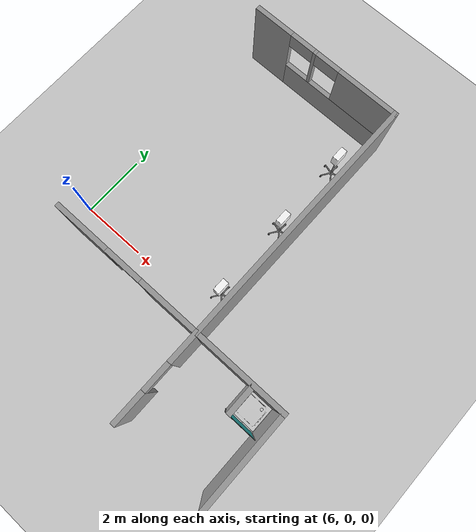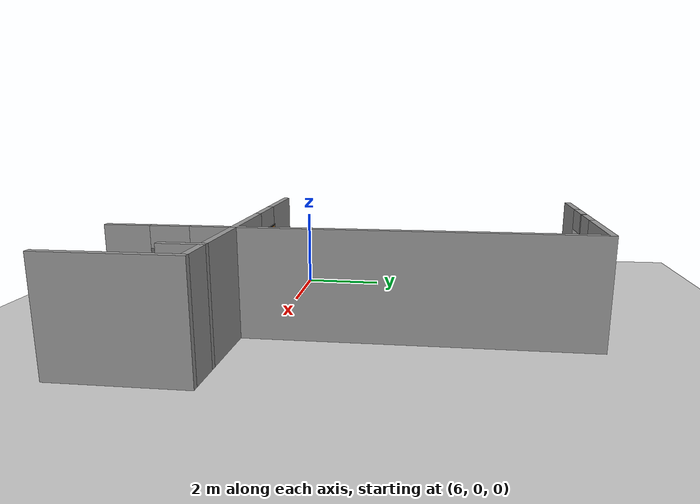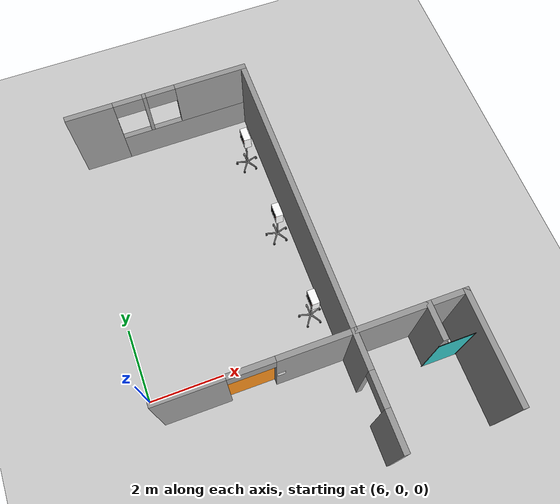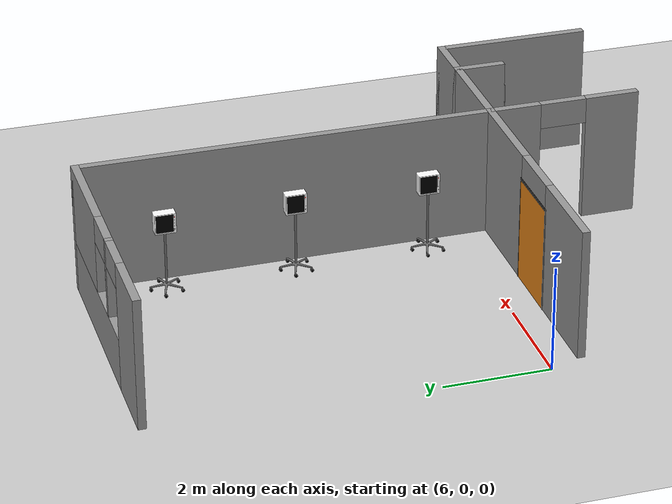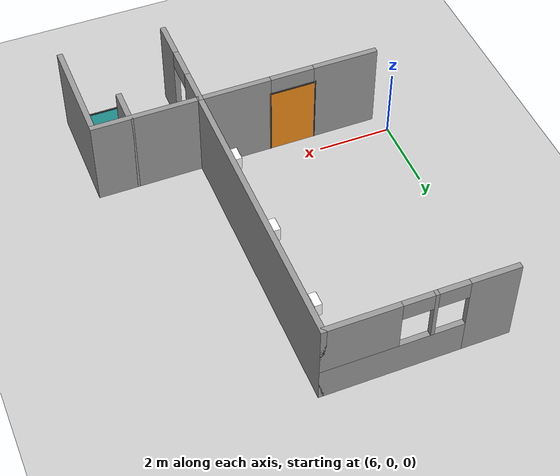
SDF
<sdf version="1.6">
 <world name="default">
  <model name="ground_plane">
   <static>1</static>
   <link name="link">
    <collision name="collision">
     <geometry><plane><normal>0 0 1</normal><size>100 100</size></plane></geometry>
     <surface><friction><ode><mu>100</mu><mu2>50</mu2></ode></friction></surface>
    </collision>
    <visual name="visual">
     <cast_shadows>0</cast_shadows>
     <geometry><plane><normal>0 0 1</normal><size>100 100</size></plane></geometry>
     <material>
      <script><uri>file://media/materials/scripts/gazebo.material</uri><name>Gazebo/Grey</name></script>
     </material>
    </visual>
   </link>
  </model>
  <model name="vitals_monitor_clone_2">
   <static>1</static>
   <link name="vitals_monitor">
    <collision name="vitals_monitor">
     <geometry><mesh><uri>model://vitals_monitor/meshes/model.dae</uri></mesh></geometry>
    </collision>
    <visual name="vitals_monitor_mesh">
     <geometry><mesh><uri>model://vitals_monitor/meshes/model.dae</uri></mesh></geometry>
    </visual>
   </link>
   <pose>10.6596 5.74993 0 0 0 -1.5708</pose>
  </model>
  <model name="vitals_monitor_clone_2_clone">
   <static>1</static>
   <link name="vitals_monitor">
    <collision name="vitals_monitor">
     <geometry><mesh><uri>model://vitals_monitor/meshes/model.dae</uri></mesh></geometry>
    </collision>
    <visual name="vitals_monitor_mesh">
     <geometry><mesh><uri>model://vitals_monitor/meshes/model.dae</uri></mesh></geometry>
    </visual>
   </link>
   <pose>10.6882 3.29236 0 0 0 -1.5708</pose>
  </model>
  <model name="vitals_monitor_clone_2_clone_0">
   <static>1</static>
   <link name="vitals_monitor">
    <collision name="vitals_monitor">
     <geometry><mesh><uri>model://vitals_monitor/meshes/model.dae</uri></mesh></geometry>
    </collision>
    <visual name="vitals_monitor_mesh">
     <geometry><mesh><uri>model://vitals_monitor/meshes/model.dae</uri></mesh></geometry>
    </visual>
   </link>
   <pose>10.7026 0.733748 0 0 0 -1.5708</pose>
  </model>
  <model name="room_door_3_clone_clone_0_clone">
   <link name="base_link">
    <inertial>
     <pose>0 0 1.00051 0 -0 0</pose>
     <mass>2001</mass>
     <inertia><ixx>797.85</ixx><ixy>0</ixy><ixz>0</ixz><iyy>4.0501</iyy><iyz>0</iyz><izz>796.8</izz></inertia>
    </inertial>
    <collision name="base_link_fixed_joint_lump__top_post_collision">
     <pose>0 0 2.025 0 -0 0</pose>
     <geometry><box><size>0.01 1.3 0.05</size></box></geometry>
    </collision>
    <collision name="base_link_fixed_joint_lump__left_post_collision_1">
     <pose>0 -0.63 1 0 -0 0</pose>
     <geometry><box><size>0.01 0.04 2</size></box></geometry>
    </collision>
    <collision name="base_link_fixed_joint_lump__right_post_collision_2">
     <pose>0 0.63 1 0 -0 0</pose>
     <geometry><box><size>0.01 0.04 2</size></box></geometry>
    </collision>
    <visual name="base_link_fixed_joint_lump__top_post_visual">
     <pose>0 0 2.025 0 -0 0</pose>
     <geometry><box><size>0.01 1.3 0.05</size></box></geometry>
     <material>
      <script><name>Gazebo/Black</name><uri>file://media/materials/scripts/gazebo.material</uri></script>
     </material>
    </visual>
    <visual name="base_link_fixed_joint_lump__left_post_visual_1">
     <pose>0 -0.63 1 0 -0 0</pose>
     <geometry><box><size>0.01 0.04 2</size></box></geometry>
     <material>
      <script><name>Gazebo/Black</name><uri>file://media/materials/scripts/gazebo.material</uri></script>
     </material>
    </visual>
    <visual name="base_link_fixed_joint_lump__right_post_visual_2">
     <pose>0 0.63 1 0 -0 0</pose>
     <geometry><box><size>0.01 0.04 2</size></box></geometry>
     <material>
      <script><name>Gazebo/Black</name><uri>file://media/materials/scripts/gazebo.material</uri></script>
     </material>
    </visual>
   </link>
   <link name="door_front">
    <pose>0.005 -0.61 1 0 -0 0</pose>
    <inertial>
     <mass>1</mass>
     <inertia><ixx>1</ixx><ixy>0</ixy><ixz>0</ixz><iyy>1</iyy><iyz>0</iyz><izz>1</izz></inertia>
    </inertial>
    <collision name="door_front_collision">
     <pose>-0.005 0.61 0.005 0 -0 0</pose>
     <geometry><box><size>0.01 1.22 1.99</size></box></geometry>
    </collision>
    <visual name="door_front_visual">
     <pose>-0.005 0.61 0.005 0 -0 0</pose>
     <geometry><box><size>0.01 1.22 1.99</size></box></geometry>
     <material>
      <script><name>Gazebo/Orange</name><uri>file://media/materials/scripts/gazebo.material</uri></script>
     </material>
    </visual>
   </link>
   <joint name="door_front_to_left_post" type="revolute">
    <child>door_front</child>
    <parent>base_link</parent>
    <axis>
     <xyz>0 0 1</xyz>
     <limit><lower>-3.14</lower><upper>0</upper><effort>1000</effort><velocity>100</velocity></limit>
     <dynamics>
      <damping>0.5</damping>
      <friction>0</friction>
      <spring_reference>0</spring_reference>
      <spring_stiffness>0</spring_stiffness>
     </dynamics>
     <use_parent_model_frame>0</use_parent_model_frame>
    </axis>
   </joint>
   <pose>8.60531 -0.539945 -5e-06 1e-06 -1e-06 1.57057</pose>
  </model>
  <model name="wading_pool">
   <static>1</static>
   <link name="wading_pool">
    <collision name="wading_pool">
     <geometry><mesh><uri>model://wading_pool/meshes/model.dae</uri></mesh></geometry>
    </collision>
    <visual name="wading_pool_mesh">
     <geometry><mesh><uri>model://wading_pool/meshes/model.dae</uri></mesh></geometry>
    </visual>
   </link>
   <pose>13.4946 -1.09947 0 0 0 -1.57572</pose>
  </model>
  <model name="hospital_walls">
   <link name="Wall_24">
    <pose>8.7 7.275 0 0 -0 0</pose>
    <inertial>
     <mass>1</mass>
     <inertia><ixx>1</ixx><ixy>0</ixy><ixz>0</ixz><iyy>1</iyy><iyz>0</iyz><izz>1</izz></inertia>
    </inertial>
    <visual name="Wall_24_Visual_3">
     <pose>1.5 0 1.75 0 -0 0</pose>
     <geometry><box><size>2 0.15 1.5</size></box></geometry>
     <material>
      <script><uri>file://media/materials/scripts/gazebo.material</uri><name>Gazebo/Grey</name></script>
      <ambient>1 1 1 1</ambient>
      <shader type="vertex"><normal_map>__default__</normal_map></shader>
      <diffuse>0.7 0.7 0.7 1</diffuse>
      <specular>0.01 0.01 0.01 1</specular>
      <emissive>0 0 0 1</emissive>
     </material>
     <meta><layer>0</layer></meta>
    </visual>
    <visual name="Wall_24_Visual_0">
     <pose>-1.85 0 1.25 0 -0 0</pose>
     <geometry><box><size>1.3 0.15 2.5</size></box></geometry>
     <material>
      <script><uri>file://media/materials/scripts/gazebo.material</uri><name>Gazebo/Grey</name></script>
      <ambient>1 1 1 1</ambient>
      <shader type="vertex"><normal_map>__default__</normal_map></shader>
      <diffuse>0.7 0.7 0.7 1</diffuse>
      <specular>0.01 0.01 0.01 1</specular>
      <emissive>0 0 0 1</emissive>
     </material>
     <meta><layer>0</layer></meta>
    </visual>
    <visual name="Wall_24_Visual_4">
     <pose>-0.8 0 2.25 0 -0 0</pose>
     <geometry><box><size>0.8 0.15 0.5</size></box></geometry>
     <material>
      <script><uri>file://media/materials/scripts/gazebo.material</uri><name>Gazebo/Grey</name></script>
      <ambient>1 1 1 1</ambient>
      <shader type="vertex"><normal_map>__default__</normal_map></shader>
      <diffuse>0.7 0.7 0.7 1</diffuse>
      <specular>0.01 0.01 0.01 1</specular>
      <emissive>0 0 0 1</emissive>
     </material>
     <meta><layer>0</layer></meta>
    </visual>
    <visual name="Wall_24_Visual_5">
     <pose>0.1 0 2.25 0 -0 0</pose>
     <geometry><box><size>0.8 0.15 0.5</size></box></geometry>
     <material>
      <script><uri>file://media/materials/scripts/gazebo.material</uri><name>Gazebo/Grey</name></script>
      <ambient>1 1 1 1</ambient>
      <shader type="vertex"><normal_map>__default__</normal_map></shader>
      <diffuse>0.7 0.7 0.7 1</diffuse>
      <specular>0.01 0.01 0.01 1</specular>
      <emissive>0 0 0 1</emissive>
     </material>
     <meta><layer>0</layer></meta>
    </visual>
    <visual name="Wall_24_Visual_2">
     <pose>-0.35 0 1.75 0 -0 0</pose>
     <geometry><box><size>0.1 0.15 1.5</size></box></geometry>
     <material>
      <script><uri>file://media/materials/scripts/gazebo.material</uri><name>Gazebo/Grey</name></script>
      <ambient>1 1 1 1</ambient>
      <shader type="vertex"><normal_map>__default__</normal_map></shader>
      <diffuse>0.7 0.7 0.7 1</diffuse>
      <specular>0.01 0.01 0.01 1</specular>
      <emissive>0 0 0 1</emissive>
     </material>
     <meta><layer>0</layer></meta>
    </visual>
    <visual name="Wall_24_Visual_1">
     <pose>0.65 0 0.5 0 -0 0</pose>
     <geometry><box><size>3.7 0.15 1</size></box></geometry>
     <material>
      <script><uri>file://media/materials/scripts/gazebo.material</uri><name>Gazebo/Grey</name></script>
      <ambient>1 1 1 1</ambient>
      <shader type="vertex"><normal_map>__default__</normal_map></shader>
      <diffuse>0.7 0.7 0.7 1</diffuse>
      <specular>0.01 0.01 0.01 1</specular>
      <emissive>0 0 0 1</emissive>
     </material>
     <meta><layer>0</layer></meta>
    </visual>
    <collision name="Wall_24_Collision_1">
     <pose>0.65 0 0.5 0 -0 0</pose>
     <geometry><box><size>3.7 0.15 1</size></box></geometry>
     <surface>
      <friction>
       <ode><mu>1</mu><mu2>1</mu2><fdir1>0 0 0</fdir1><slip1>0</slip1><slip2>0</slip2></ode>
       <torsional>
        <coefficient>1</coefficient>
        <patch_radius>0</patch_radius>
        <surface_radius>0</surface_radius>
        <use_patch_radius>1</use_patch_radius>
        <ode><slip>0</slip></ode>
       </torsional>
      </friction>
      <bounce><restitution_coefficient>0</restitution_coefficient><threshold>1e+06</threshold></bounce>
      <contact>
       <collide_without_contact>0</collide_without_contact>
       <collide_without_contact_bitmask>1</collide_without_contact_bitmask>
       <collide_bitmask>1</collide_bitmask>
       <ode>
        <soft_cfm>0</soft_cfm>
        <soft_erp>0.2</soft_erp>
        <kp>1e+13</kp>
        <kd>1</kd>
        <max_vel>0.01</max_vel>
        <min_depth>0</min_depth>
       </ode>
       <bullet>
        <split_impulse>1</split_impulse>
        <split_impulse_penetration_threshold>-0.01</split_impulse_penetration_threshold>
        <soft_cfm>0</soft_cfm>
        <soft_erp>0.2</soft_erp>
        <kp>1e+13</kp>
        <kd>1</kd>
       </bullet>
      </contact>
     </surface>
    </collision>
    <collision name="Wall_24_Collision_2">
     <pose>-0.35 0 1.75 0 -0 0</pose>
     <geometry><box><size>0.1 0.15 1.5</size></box></geometry>
     <surface>
      <friction>
       <ode><mu>1</mu><mu2>1</mu2><fdir1>0 0 0</fdir1><slip1>0</slip1><slip2>0</slip2></ode>
       <torsional>
        <coefficient>1</coefficient>
        <patch_radius>0</patch_radius>
        <surface_radius>0</surface_radius>
        <use_patch_radius>1</use_patch_radius>
        <ode><slip>0</slip></ode>
       </torsional>
      </friction>
      <bounce><restitution_coefficient>0</restitution_coefficient><threshold>1e+06</threshold></bounce>
      <contact>
       <collide_without_contact>0</collide_without_contact>
       <collide_without_contact_bitmask>1</collide_without_contact_bitmask>
       <collide_bitmask>1</collide_bitmask>
       <ode>
        <soft_cfm>0</soft_cfm>
        <soft_erp>0.2</soft_erp>
        <kp>1e+13</kp>
        <kd>1</kd>
        <max_vel>0.01</max_vel>
        <min_depth>0</min_depth>
       </ode>
       <bullet>
        <split_impulse>1</split_impulse>
        <split_impulse_penetration_threshold>-0.01</split_impulse_penetration_threshold>
        <soft_cfm>0</soft_cfm>
        <soft_erp>0.2</soft_erp>
        <kp>1e+13</kp>
        <kd>1</kd>
       </bullet>
      </contact>
     </surface>
    </collision>
    <collision name="Wall_24_Collision_0">
     <pose>-1.85 0 1.25 0 -0 0</pose>
     <geometry><box><size>1.3 0.15 2.5</size></box></geometry>
     <surface>
      <friction>
       <ode><mu>1</mu><mu2>1</mu2><fdir1>0 0 0</fdir1><slip1>0</slip1><slip2>0</slip2></ode>
       <torsional>
        <coefficient>1</coefficient>
        <patch_radius>0</patch_radius>
        <surface_radius>0</surface_radius>
        <use_patch_radius>1</use_patch_radius>
        <ode><slip>0</slip></ode>
       </torsional>
      </friction>
      <bounce><restitution_coefficient>0</restitution_coefficient><threshold>1e+06</threshold></bounce>
      <contact>
       <collide_without_contact>0</collide_without_contact>
       <collide_without_contact_bitmask>1</collide_without_contact_bitmask>
       <collide_bitmask>1</collide_bitmask>
       <ode>
        <soft_cfm>0</soft_cfm>
        <soft_erp>0.2</soft_erp>
        <kp>1e+13</kp>
        <kd>1</kd>
        <max_vel>0.01</max_vel>
        <min_depth>0</min_depth>
       </ode>
       <bullet>
        <split_impulse>1</split_impulse>
        <split_impulse_penetration_threshold>-0.01</split_impulse_penetration_threshold>
        <soft_cfm>0</soft_cfm>
        <soft_erp>0.2</soft_erp>
        <kp>1e+13</kp>
        <kd>1</kd>
       </bullet>
      </contact>
     </surface>
    </collision>
    <collision name="Wall_24_Collision_5">
     <pose>0.1 0 2.25 0 -0 0</pose>
     <geometry><box><size>0.8 0.15 0.5</size></box></geometry>
     <surface>
      <friction>
       <ode><mu>1</mu><mu2>1</mu2><fdir1>0 0 0</fdir1><slip1>0</slip1><slip2>0</slip2></ode>
       <torsional>
        <coefficient>1</coefficient>
        <patch_radius>0</patch_radius>
        <surface_radius>0</surface_radius>
        <use_patch_radius>1</use_patch_radius>
        <ode><slip>0</slip></ode>
       </torsional>
      </friction>
      <bounce><restitution_coefficient>0</restitution_coefficient><threshold>1e+06</threshold></bounce>
      <contact>
       <collide_without_contact>0</collide_without_contact>
       <collide_without_contact_bitmask>1</collide_without_contact_bitmask>
       <collide_bitmask>1</collide_bitmask>
       <ode>
        <soft_cfm>0</soft_cfm>
        <soft_erp>0.2</soft_erp>
        <kp>1e+13</kp>
        <kd>1</kd>
        <max_vel>0.01</max_vel>
        <min_depth>0</min_depth>
       </ode>
       <bullet>
        <split_impulse>1</split_impulse>
        <split_impulse_penetration_threshold>-0.01</split_impulse_penetration_threshold>
        <soft_cfm>0</soft_cfm>
        <soft_erp>0.2</soft_erp>
        <kp>1e+13</kp>
        <kd>1</kd>
       </bullet>
      </contact>
     </surface>
    </collision>
    <collision name="Wall_24_Collision_3">
     <pose>1.5 0 1.75 0 -0 0</pose>
     <geometry><box><size>2 0.15 1.5</size></box></geometry>
     <surface>
      <friction>
       <ode><mu>1</mu><mu2>1</mu2><fdir1>0 0 0</fdir1><slip1>0</slip1><slip2>0</slip2></ode>
       <torsional>
        <coefficient>1</coefficient>
        <patch_radius>0</patch_radius>
        <surface_radius>0</surface_radius>
        <use_patch_radius>1</use_patch_radius>
        <ode><slip>0</slip></ode>
       </torsional>
      </friction>
      <bounce><restitution_coefficient>0</restitution_coefficient><threshold>1e+06</threshold></bounce>
      <contact>
       <collide_without_contact>0</collide_without_contact>
       <collide_without_contact_bitmask>1</collide_without_contact_bitmask>
       <collide_bitmask>1</collide_bitmask>
       <ode>
        <soft_cfm>0</soft_cfm>
        <soft_erp>0.2</soft_erp>
        <kp>1e+13</kp>
        <kd>1</kd>
        <max_vel>0.01</max_vel>
        <min_depth>0</min_depth>
       </ode>
       <bullet>
        <split_impulse>1</split_impulse>
        <split_impulse_penetration_threshold>-0.01</split_impulse_penetration_threshold>
        <soft_cfm>0</soft_cfm>
        <soft_erp>0.2</soft_erp>
        <kp>1e+13</kp>
        <kd>1</kd>
       </bullet>
      </contact>
     </surface>
    </collision>
    <collision name="Wall_24_Collision_4">
     <pose>-0.8 0 2.25 0 -0 0</pose>
     <geometry><box><size>0.8 0.15 0.5</size></box></geometry>
     <surface>
      <friction>
       <ode><mu>1</mu><mu2>1</mu2><fdir1>0 0 0</fdir1><slip1>0</slip1><slip2>0</slip2></ode>
       <torsional>
        <coefficient>1</coefficient>
        <patch_radius>0</patch_radius>
        <surface_radius>0</surface_radius>
        <use_patch_radius>1</use_patch_radius>
        <ode><slip>0</slip></ode>
       </torsional>
      </friction>
      <bounce><restitution_coefficient>0</restitution_coefficient><threshold>1e+06</threshold></bounce>
      <contact>
       <collide_without_contact>0</collide_without_contact>
       <collide_without_contact_bitmask>1</collide_without_contact_bitmask>
       <collide_bitmask>1</collide_bitmask>
       <ode>
        <soft_cfm>0</soft_cfm>
        <soft_erp>0.2</soft_erp>
        <kp>1e+13</kp>
        <kd>1</kd>
        <max_vel>0.01</max_vel>
        <min_depth>0</min_depth>
       </ode>
       <bullet>
        <split_impulse>1</split_impulse>
        <split_impulse_penetration_threshold>-0.01</split_impulse_penetration_threshold>
        <soft_cfm>0</soft_cfm>
        <soft_erp>0.2</soft_erp>
        <kp>1e+13</kp>
        <kd>1</kd>
       </bullet>
      </contact>
     </surface>
    </collision>
   </link>
   <link name="Wall_25">
    <pose>11.125 3.35 0 0 0 -1.5708</pose>
    <visual name="Wall_25_Visual">
     <pose>0 0 1.25 0 -0 0</pose>
     <geometry><box><size>8 0.15 2.5</size></box></geometry>
     <material>
      <script><uri>file://media/materials/scripts/gazebo.material</uri><name>Gazebo/Grey</name></script>
      <ambient>1 1 1 1</ambient>
      <shader type="pixel"/>
     </material>
     <meta><layer>0</layer></meta>
    </visual>
    <collision name="Wall_25_Collision">
     <pose>0 0 1.25 0 -0 0</pose>
     <geometry><box><size>8 0.15 2.5</size></box></geometry>
     <surface>
      <friction>
       <ode><mu>1</mu><mu2>1</mu2><fdir1>0 0 0</fdir1><slip1>0</slip1><slip2>0</slip2></ode>
       <torsional>
        <coefficient>1</coefficient>
        <patch_radius>0</patch_radius>
        <surface_radius>0</surface_radius>
        <use_patch_radius>1</use_patch_radius>
        <ode><slip>0</slip></ode>
       </torsional>
      </friction>
      <bounce><restitution_coefficient>0</restitution_coefficient><threshold>1e+06</threshold></bounce>
      <contact>
       <collide_without_contact>0</collide_without_contact>
       <collide_without_contact_bitmask>1</collide_without_contact_bitmask>
       <collide_bitmask>1</collide_bitmask>
       <ode>
        <soft_cfm>0</soft_cfm>
        <soft_erp>0.2</soft_erp>
        <kp>1e+13</kp>
        <kd>1</kd>
        <max_vel>0.01</max_vel>
        <min_depth>0</min_depth>
       </ode>
       <bullet>
        <split_impulse>1</split_impulse>
        <split_impulse_penetration_threshold>-0.01</split_impulse_penetration_threshold>
        <soft_cfm>0</soft_cfm>
        <soft_erp>0.2</soft_erp>
        <kp>1e+13</kp>
        <kd>1</kd>
       </bullet>
      </contact>
     </surface>
    </collision>
   </link>
   <link name="Wall_26">
    <pose>8.7 -0.575 0 0 -0 3.14159</pose>
    <visual name="Wall_26_Visual_2">
     <pose>0.1 0 2.25 0 -0 0</pose>
     <geometry><box><size>1.2 0.15 0.5</size></box></geometry>
     <material>
      <script><uri>file://media/materials/scripts/gazebo.material</uri><name>Gazebo/Grey</name></script>
      <ambient>1 1 1 1</ambient>
      <shader type="pixel"/>
     </material>
     <meta><layer>0</layer></meta>
    </visual>
    <visual name="Wall_26_Visual_1">
     <pose>1.6 0 1.25 0 -0 0</pose>
     <geometry><box><size>1.8 0.15 2.5</size></box></geometry>
     <material>
      <script><uri>file://media/materials/scripts/gazebo.material</uri><name>Gazebo/Grey</name></script>
      <ambient>1 1 1 1</ambient>
      <shader type="pixel"/>
     </material>
     <meta><layer>0</layer></meta>
    </visual>
    <visual name="Wall_26_Visual_0">
     <pose>-1.5 0 1.25 0 -0 0</pose>
     <geometry><box><size>2 0.15 2.5</size></box></geometry>
     <material>
      <script><uri>file://media/materials/scripts/gazebo.material</uri><name>Gazebo/Grey</name></script>
      <ambient>1 1 1 1</ambient>
      <shader type="pixel"/>
     </material>
     <meta><layer>0</layer></meta>
    </visual>
    <collision name="Wall_26_Collision_0">
     <pose>-1.5 0 1.25 0 -0 0</pose>
     <geometry><box><size>2 0.15 2.5</size></box></geometry>
     <surface>
      <friction>
       <ode><mu>1</mu><mu2>1</mu2><fdir1>0 0 0</fdir1><slip1>0</slip1><slip2>0</slip2></ode>
       <torsional>
        <coefficient>1</coefficient>
        <patch_radius>0</patch_radius>
        <surface_radius>0</surface_radius>
        <use_patch_radius>1</use_patch_radius>
        <ode><slip>0</slip></ode>
       </torsional>
      </friction>
      <bounce><restitution_coefficient>0</restitution_coefficient><threshold>1e+06</threshold></bounce>
      <contact>
       <collide_without_contact>0</collide_without_contact>
       <collide_without_contact_bitmask>1</collide_without_contact_bitmask>
       <collide_bitmask>1</collide_bitmask>
       <ode>
        <soft_cfm>0</soft_cfm>
        <soft_erp>0.2</soft_erp>
        <kp>1e+13</kp>
        <kd>1</kd>
        <max_vel>0.01</max_vel>
        <min_depth>0</min_depth>
       </ode>
       <bullet>
        <split_impulse>1</split_impulse>
        <split_impulse_penetration_threshold>-0.01</split_impulse_penetration_threshold>
        <soft_cfm>0</soft_cfm>
        <soft_erp>0.2</soft_erp>
        <kp>1e+13</kp>
        <kd>1</kd>
       </bullet>
      </contact>
     </surface>
    </collision>
    <collision name="Wall_26_Collision_1">
     <pose>1.6 0 1.25 0 -0 0</pose>
     <geometry><box><size>1.8 0.15 2.5</size></box></geometry>
     <surface>
      <friction>
       <ode><mu>1</mu><mu2>1</mu2><fdir1>0 0 0</fdir1><slip1>0</slip1><slip2>0</slip2></ode>
       <torsional>
        <coefficient>1</coefficient>
        <patch_radius>0</patch_radius>
        <surface_radius>0</surface_radius>
        <use_patch_radius>1</use_patch_radius>
        <ode><slip>0</slip></ode>
       </torsional>
      </friction>
      <bounce><restitution_coefficient>0</restitution_coefficient><threshold>1e+06</threshold></bounce>
      <contact>
       <collide_without_contact>0</collide_without_contact>
       <collide_without_contact_bitmask>1</collide_without_contact_bitmask>
       <collide_bitmask>1</collide_bitmask>
       <ode>
        <soft_cfm>0</soft_cfm>
        <soft_erp>0.2</soft_erp>
        <kp>1e+13</kp>
        <kd>1</kd>
        <max_vel>0.01</max_vel>
        <min_depth>0</min_depth>
       </ode>
       <bullet>
        <split_impulse>1</split_impulse>
        <split_impulse_penetration_threshold>-0.01</split_impulse_penetration_threshold>
        <soft_cfm>0</soft_cfm>
        <soft_erp>0.2</soft_erp>
        <kp>1e+13</kp>
        <kd>1</kd>
       </bullet>
      </contact>
     </surface>
    </collision>
    <collision name="Wall_26_Collision_2">
     <pose>0.1 0 2.25 0 -0 0</pose>
     <geometry><box><size>1.2 0.15 0.5</size></box></geometry>
     <surface>
      <friction>
       <ode><mu>1</mu><mu2>1</mu2><fdir1>0 0 0</fdir1><slip1>0</slip1><slip2>0</slip2></ode>
       <torsional>
        <coefficient>1</coefficient>
        <patch_radius>0</patch_radius>
        <surface_radius>0</surface_radius>
        <use_patch_radius>1</use_patch_radius>
        <ode><slip>0</slip></ode>
       </torsional>
      </friction>
      <bounce><restitution_coefficient>0</restitution_coefficient><threshold>1e+06</threshold></bounce>
      <contact>
       <collide_without_contact>0</collide_without_contact>
       <collide_without_contact_bitmask>1</collide_without_contact_bitmask>
       <collide_bitmask>1</collide_bitmask>
       <ode>
        <soft_cfm>0</soft_cfm>
        <soft_erp>0.2</soft_erp>
        <kp>1e+13</kp>
        <kd>1</kd>
        <max_vel>0.01</max_vel>
        <min_depth>0</min_depth>
       </ode>
       <bullet>
        <split_impulse>1</split_impulse>
        <split_impulse_penetration_threshold>-0.01</split_impulse_penetration_threshold>
        <soft_cfm>0</soft_cfm>
        <soft_erp>0.2</soft_erp>
        <kp>1e+13</kp>
        <kd>1</kd>
       </bullet>
      </contact>
     </surface>
    </collision>
   </link>
   <link name="Wall_28">
    <pose>11.125 -2 0 0 0 -1.5708</pose>
    <inertial>
     <mass>1</mass>
     <inertia><ixx>1</ixx><ixy>0</ixy><ixz>0</ixz><iyy>1</iyy><iyz>0</iyz><izz>1</izz></inertia>
    </inertial>
    <visual name="Wall_28_Visual_2">
     <pose>0 0 2.25 0 -0 0</pose>
     <geometry><box><size>0.9 0.15 0.5</size></box></geometry>
     <material>
      <script><uri>file://media/materials/scripts/gazebo.material</uri><name>Gazebo/Grey</name></script>
      <ambient>1 1 1 1</ambient>
      <shader type="pixel"><normal_map>__default__</normal_map></shader>
     </material>
     <meta><layer>0</layer></meta>
    </visual>
    <visual name="Wall_28_Visual_1">
     <pose>0.975 0 1.25 0 -0 0</pose>
     <geometry><box><size>1.05 0.15 2.5</size></box></geometry>
     <material>
      <script><uri>file://media/materials/scripts/gazebo.material</uri><name>Gazebo/Grey</name></script>
      <ambient>1 1 1 1</ambient>
      <shader type="pixel"><normal_map>__default__</normal_map></shader>
     </material>
     <meta><layer>0</layer></meta>
    </visual>
    <visual name="Wall_28_Visual_0">
     <pose>-0.975 0 1.25 0 -0 0</pose>
     <geometry><box><size>1.05 0.15 2.5</size></box></geometry>
     <material>
      <script><uri>file://media/materials/scripts/gazebo.material</uri><name>Gazebo/Grey</name></script>
      <ambient>1 1 1 1</ambient>
      <shader type="pixel"><normal_map>__default__</normal_map></shader>
     </material>
     <meta><layer>0</layer></meta>
    </visual>
    <collision name="Wall_28_Collision_1">
     <pose>0.975 0 1.25 0 -0 0</pose>
     <geometry><box><size>1.05 0.15 2.5</size></box></geometry>
     <surface>
      <friction>
       <ode><mu>1</mu><mu2>1</mu2><fdir1>0 0 0</fdir1><slip1>0</slip1><slip2>0</slip2></ode>
       <torsional>
        <coefficient>1</coefficient>
        <patch_radius>0</patch_radius>
        <surface_radius>0</surface_radius>
        <use_patch_radius>1</use_patch_radius>
        <ode><slip>0</slip></ode>
       </torsional>
      </friction>
      <bounce><restitution_coefficient>0</restitution_coefficient><threshold>1e+06</threshold></bounce>
      <contact>
       <collide_without_contact>0</collide_without_contact>
       <collide_without_contact_bitmask>1</collide_without_contact_bitmask>
       <collide_bitmask>1</collide_bitmask>
       <ode>
        <soft_cfm>0</soft_cfm>
        <soft_erp>0.2</soft_erp>
        <kp>1e+13</kp>
        <kd>1</kd>
        <max_vel>0.01</max_vel>
        <min_depth>0</min_depth>
       </ode>
       <bullet>
        <split_impulse>1</split_impulse>
        <split_impulse_penetration_threshold>-0.01</split_impulse_penetration_threshold>
        <soft_cfm>0</soft_cfm>
        <soft_erp>0.2</soft_erp>
        <kp>1e+13</kp>
        <kd>1</kd>
       </bullet>
      </contact>
     </surface>
    </collision>
    <collision name="Wall_28_Collision_0">
     <pose>-0.975 0 1.25 0 -0 0</pose>
     <geometry><box><size>1.05 0.15 2.5</size></box></geometry>
     <surface>
      <friction>
       <ode><mu>1</mu><mu2>1</mu2><fdir1>0 0 0</fdir1><slip1>0</slip1><slip2>0</slip2></ode>
       <torsional>
        <coefficient>1</coefficient>
        <patch_radius>0</patch_radius>
        <surface_radius>0</surface_radius>
        <use_patch_radius>1</use_patch_radius>
        <ode><slip>0</slip></ode>
       </torsional>
      </friction>
      <bounce><restitution_coefficient>0</restitution_coefficient><threshold>1e+06</threshold></bounce>
      <contact>
       <collide_without_contact>0</collide_without_contact>
       <collide_without_contact_bitmask>1</collide_without_contact_bitmask>
       <collide_bitmask>1</collide_bitmask>
       <ode>
        <soft_cfm>0</soft_cfm>
        <soft_erp>0.2</soft_erp>
        <kp>1e+13</kp>
        <kd>1</kd>
        <max_vel>0.01</max_vel>
        <min_depth>0</min_depth>
       </ode>
       <bullet>
        <split_impulse>1</split_impulse>
        <split_impulse_penetration_threshold>-0.01</split_impulse_penetration_threshold>
        <soft_cfm>0</soft_cfm>
        <soft_erp>0.2</soft_erp>
        <kp>1e+13</kp>
        <kd>1</kd>
       </bullet>
      </contact>
     </surface>
    </collision>
    <collision name="Wall_28_Collision_2">
     <pose>0 0 2.25 0 -0 0</pose>
     <geometry><box><size>0.9 0.15 0.5</size></box></geometry>
     <surface>
      <friction>
       <ode><mu>1</mu><mu2>1</mu2><fdir1>0 0 0</fdir1><slip1>0</slip1><slip2>0</slip2></ode>
       <torsional>
        <coefficient>1</coefficient>
        <patch_radius>0</patch_radius>
        <surface_radius>0</surface_radius>
        <use_patch_radius>1</use_patch_radius>
        <ode><slip>0</slip></ode>
       </torsional>
      </friction>
      <bounce><restitution_coefficient>0</restitution_coefficient><threshold>1e+06</threshold></bounce>
      <contact>
       <collide_without_contact>0</collide_without_contact>
       <collide_without_contact_bitmask>1</collide_without_contact_bitmask>
       <collide_bitmask>1</collide_bitmask>
       <ode>
        <soft_cfm>0</soft_cfm>
        <soft_erp>0.2</soft_erp>
        <kp>1e+13</kp>
        <kd>1</kd>
        <max_vel>0.01</max_vel>
        <min_depth>0</min_depth>
       </ode>
       <bullet>
        <split_impulse>1</split_impulse>
        <split_impulse_penetration_threshold>-0.01</split_impulse_penetration_threshold>
        <soft_cfm>0</soft_cfm>
        <soft_erp>0.2</soft_erp>
        <kp>1e+13</kp>
        <kd>1</kd>
       </bullet>
      </contact>
     </surface>
    </collision>
   </link>
   <link name="Wall_28_clone">
    <pose>13.975 -2 0 0 0 -1.5708</pose>
    <inertial>
     <mass>1</mass>
     <inertia><ixx>1</ixx><ixy>0</ixy><ixz>0</ixz><iyy>1</iyy><iyz>0</iyz><izz>1</izz></inertia>
    </inertial>
    <visual name="Wall_28_Visual_2">
     <pose>0 0 1.25 0 -0 0</pose>
     <geometry><box><size>3 0.15 2.5</size></box></geometry>
     <material>
      <script><uri>file://media/materials/scripts/gazebo.material</uri><name>Gazebo/Grey</name></script>
      <ambient>1 1 1 1</ambient>
      <shader type="pixel"><normal_map>__default__</normal_map></shader>
      <diffuse>0.7 0.7 0.7 1</diffuse>
      <specular>0.01 0.01 0.01 1</specular>
      <emissive>0 0 0 1</emissive>
     </material>
     <meta><layer>0</layer></meta>
    </visual>
    <collision name="Wall_28_Collision_2">
     <pose>0 0 1.25 0 -0 0</pose>
     <geometry><box><size>3 0.15 2.5</size></box></geometry>
     <surface>
      <friction>
       <ode><mu>1</mu><mu2>1</mu2><fdir1>0 0 0</fdir1><slip1>0</slip1><slip2>0</slip2></ode>
       <torsional>
        <coefficient>1</coefficient>
        <patch_radius>0</patch_radius>
        <surface_radius>0</surface_radius>
        <use_patch_radius>1</use_patch_radius>
        <ode><slip>0</slip></ode>
       </torsional>
      </friction>
      <bounce><restitution_coefficient>0</restitution_coefficient><threshold>1e+06</threshold></bounce>
      <contact>
       <collide_without_contact>0</collide_without_contact>
       <collide_without_contact_bitmask>1</collide_without_contact_bitmask>
       <collide_bitmask>1</collide_bitmask>
       <ode>
        <soft_cfm>0</soft_cfm>
        <soft_erp>0.2</soft_erp>
        <kp>1e+13</kp>
        <kd>1</kd>
        <max_vel>0.01</max_vel>
        <min_depth>0</min_depth>
       </ode>
       <bullet>
        <split_impulse>1</split_impulse>
        <split_impulse_penetration_threshold>-0.01</split_impulse_penetration_threshold>
        <soft_cfm>0</soft_cfm>
        <soft_erp>0.2</soft_erp>
        <kp>1e+13</kp>
        <kd>1</kd>
       </bullet>
      </contact>
     </surface>
    </collision>
   </link>
   <link name="Wall_28_clone_clone_0">
    <pose>13 -1 0 0 0 -1.5708</pose>
    <inertial>
     <mass>1</mass>
     <inertia><ixx>1</ixx><ixy>0</ixy><ixz>0</ixz><iyy>1</iyy><iyz>0</iyz><izz>1</izz></inertia>
    </inertial>
    <visual name="Wall_28_Visual_2">
     <pose>0 0 1.25 0 -0 0</pose>
     <geometry><box><size>1 0.15 2.5</size></box></geometry>
     <material>
      <script><uri>file://media/materials/scripts/gazebo.material</uri><name>Gazebo/Grey</name></script>
      <ambient>1 1 1 1</ambient>
      <shader type="pixel"><normal_map>__default__</normal_map></shader>
      <diffuse>0.7 0.7 0.7 1</diffuse>
      <specular>0.01 0.01 0.01 1</specular>
      <emissive>0 0 0 1</emissive>
     </material>
     <meta><layer>0</layer></meta>
    </visual>
    <collision name="Wall_28_Collision_2">
     <pose>0 0 1.25 0 -0 0</pose>
     <geometry><box><size>1 0.15 2.5</size></box></geometry>
     <surface>
      <friction>
       <ode><mu>1</mu><mu2>1</mu2><fdir1>0 0 0</fdir1><slip1>0</slip1><slip2>0</slip2></ode>
       <torsional>
        <coefficient>1</coefficient>
        <patch_radius>0</patch_radius>
        <surface_radius>0</surface_radius>
        <use_patch_radius>1</use_patch_radius>
        <ode><slip>0</slip></ode>
       </torsional>
      </friction>
      <bounce><restitution_coefficient>0</restitution_coefficient><threshold>1e+06</threshold></bounce>
      <contact>
       <collide_without_contact>0</collide_without_contact>
       <collide_without_contact_bitmask>1</collide_without_contact_bitmask>
       <collide_bitmask>1</collide_bitmask>
       <ode>
        <soft_cfm>0</soft_cfm>
        <soft_erp>0.2</soft_erp>
        <kp>1e+13</kp>
        <kd>1</kd>
        <max_vel>0.01</max_vel>
        <min_depth>0</min_depth>
       </ode>
       <bullet>
        <split_impulse>1</split_impulse>
        <split_impulse_penetration_threshold>-0.01</split_impulse_penetration_threshold>
        <soft_cfm>0</soft_cfm>
        <soft_erp>0.2</soft_erp>
        <kp>1e+13</kp>
        <kd>1</kd>
       </bullet>
      </contact>
     </surface>
    </collision>
   </link>
   <link name="Wall_28_clone_clone_clone">
    <pose>12.55 -0.575 0 0 -0 0</pose>
    <inertial>
     <mass>1</mass>
     <inertia><ixx>1</ixx><ixy>0</ixy><ixz>0</ixz><iyy>1</iyy><iyz>0</iyz><izz>1</izz></inertia>
    </inertial>
    <visual name="Wall_28_Visual_2">
     <pose>0 0 1.25 0 -0 0</pose>
     <geometry><box><size>3 0.15 2.5</size></box></geometry>
     <material>
      <script><uri>file://media/materials/scripts/gazebo.material</uri><name>Gazebo/Grey</name></script>
      <ambient>1 1 1 1</ambient>
      <shader type="pixel"><normal_map>__default__</normal_map></shader>
      <diffuse>0.7 0.7 0.7 1</diffuse>
      <specular>0.01 0.01 0.01 1</specular>
      <emissive>0 0 0 1</emissive>
     </material>
     <meta><layer>0</layer></meta>
    </visual>
    <collision name="Wall_28_Collision_2">
     <pose>0 0 1.25 0 -0 0</pose>
     <geometry><box><size>3 0.15 2.5</size></box></geometry>
     <surface>
      <friction>
       <ode><mu>1</mu><mu2>1</mu2><fdir1>0 0 0</fdir1><slip1>0</slip1><slip2>0</slip2></ode>
       <torsional>
        <coefficient>1</coefficient>
        <patch_radius>0</patch_radius>
        <surface_radius>0</surface_radius>
        <use_patch_radius>1</use_patch_radius>
        <ode><slip>0</slip></ode>
       </torsional>
      </friction>
      <bounce><restitution_coefficient>0</restitution_coefficient><threshold>1e+06</threshold></bounce>
      <contact>
       <collide_without_contact>0</collide_without_contact>
       <collide_without_contact_bitmask>1</collide_without_contact_bitmask>
       <collide_bitmask>1</collide_bitmask>
       <ode>
        <soft_cfm>0</soft_cfm>
        <soft_erp>0.2</soft_erp>
        <kp>1e+13</kp>
        <kd>1</kd>
        <max_vel>0.01</max_vel>
        <min_depth>0</min_depth>
       </ode>
       <bullet>
        <split_impulse>1</split_impulse>
        <split_impulse_penetration_threshold>-0.01</split_impulse_penetration_threshold>
        <soft_cfm>0</soft_cfm>
        <soft_erp>0.2</soft_erp>
        <kp>1e+13</kp>
        <kd>1</kd>
       </bullet>
      </contact>
     </surface>
    </collision>
   </link>
   <static>1</static>
   <pose>0.01191 -0.04531 0 0 -0 0</pose>
  </model>
  <model name="shower_door">
   <link name="base_link">
    <inertial>
     <pose>0 0 1.00051 0 -0 0</pose>
     <mass>2001</mass>
     <inertia><ixx>464.85</ixx><ixy>0</ixy><ixz>0</ixz><iyy>4.0501</iyy><iyz>0</iyz><izz>463.8</izz></inertia>
    </inertial>
    <visual name="base_link_fixed_joint_lump__top_post_visual">
     <pose>0 0 2.025 0 -0 0</pose>
     <geometry><box><size>0.01 1 0.05</size></box></geometry>
     <material>
      <script><name>Gazebo/Black</name><uri>file://media/materials/scripts/gazebo.material</uri></script>
      <shader type="pixel"/>
     </material>
    </visual>
    <visual name="base_link_fixed_joint_lump__right_post_visual_2">
     <pose>0 0.48 1 0 -0 0</pose>
     <geometry><box><size>0.01 0.04 2</size></box></geometry>
     <material>
      <script><name>Gazebo/Black</name><uri>file://media/materials/scripts/gazebo.material</uri></script>
      <shader type="pixel"/>
     </material>
    </visual>
    <visual name="base_link_fixed_joint_lump__left_post_visual_1">
     <pose>0 -0.48 1 0 -0 0</pose>
     <geometry><box><size>0.01 0.04 2</size></box></geometry>
     <material>
      <script><name>Gazebo/Black</name><uri>file://media/materials/scripts/gazebo.material</uri></script>
      <shader type="pixel"/>
     </material>
    </visual>
    <collision name="base_link_fixed_joint_lump__left_post_collision_1">
     <pose>0 -0.48 1 0 -0 0</pose>
     <geometry><box><size>0.01 0.04 2</size></box></geometry>
     <surface>
      <friction>
       <ode><mu>1</mu><mu2>1</mu2><fdir1>0 0 0</fdir1><slip1>0</slip1><slip2>0</slip2></ode>
       <torsional>
        <coefficient>1</coefficient>
        <patch_radius>0</patch_radius>
        <surface_radius>0</surface_radius>
        <use_patch_radius>1</use_patch_radius>
        <ode><slip>0</slip></ode>
       </torsional>
      </friction>
      <bounce><restitution_coefficient>0</restitution_coefficient><threshold>1e+06</threshold></bounce>
      <contact>
       <collide_without_contact>0</collide_without_contact>
       <collide_without_contact_bitmask>1</collide_without_contact_bitmask>
       <collide_bitmask>1</collide_bitmask>
       <ode>
        <soft_cfm>0</soft_cfm>
        <soft_erp>0.2</soft_erp>
        <kp>1e+13</kp>
        <kd>1</kd>
        <max_vel>0.01</max_vel>
        <min_depth>0</min_depth>
       </ode>
       <bullet>
        <split_impulse>1</split_impulse>
        <split_impulse_penetration_threshold>-0.01</split_impulse_penetration_threshold>
        <soft_cfm>0</soft_cfm>
        <soft_erp>0.2</soft_erp>
        <kp>1e+13</kp>
        <kd>1</kd>
       </bullet>
      </contact>
     </surface>
    </collision>
    <collision name="base_link_fixed_joint_lump__right_post_collision_2">
     <pose>0 0.48 1 0 -0 0</pose>
     <geometry><box><size>0.01 0.04 2</size></box></geometry>
     <surface>
      <friction>
       <ode><mu>1</mu><mu2>1</mu2><fdir1>0 0 0</fdir1><slip1>0</slip1><slip2>0</slip2></ode>
       <torsional>
        <coefficient>1</coefficient>
        <patch_radius>0</patch_radius>
        <surface_radius>0</surface_radius>
        <use_patch_radius>1</use_patch_radius>
        <ode><slip>0</slip></ode>
       </torsional>
      </friction>
      <bounce><restitution_coefficient>0</restitution_coefficient><threshold>1e+06</threshold></bounce>
      <contact>
       <collide_without_contact>0</collide_without_contact>
       <collide_without_contact_bitmask>1</collide_without_contact_bitmask>
       <collide_bitmask>1</collide_bitmask>
       <ode>
        <soft_cfm>0</soft_cfm>
        <soft_erp>0.2</soft_erp>
        <kp>1e+13</kp>
        <kd>1</kd>
        <max_vel>0.01</max_vel>
        <min_depth>0</min_depth>
       </ode>
       <bullet>
        <split_impulse>1</split_impulse>
        <split_impulse_penetration_threshold>-0.01</split_impulse_penetration_threshold>
        <soft_cfm>0</soft_cfm>
        <soft_erp>0.2</soft_erp>
        <kp>1e+13</kp>
        <kd>1</kd>
       </bullet>
      </contact>
     </surface>
    </collision>
    <collision name="base_link_fixed_joint_lump__top_post_collision">
     <pose>0 0 2.025 0 -0 0</pose>
     <geometry><box><size>0.01 1 0.05</size></box></geometry>
     <surface>
      <friction>
       <ode><mu>1</mu><mu2>1</mu2><fdir1>0 0 0</fdir1><slip1>0</slip1><slip2>0</slip2></ode>
       <torsional>
        <coefficient>1</coefficient>
        <patch_radius>0</patch_radius>
        <surface_radius>0</surface_radius>
        <use_patch_radius>1</use_patch_radius>
        <ode><slip>0</slip></ode>
       </torsional>
      </friction>
      <bounce><restitution_coefficient>0</restitution_coefficient><threshold>1e+06</threshold></bounce>
      <contact>
       <collide_without_contact>0</collide_without_contact>
       <collide_without_contact_bitmask>1</collide_without_contact_bitmask>
       <collide_bitmask>1</collide_bitmask>
       <ode>
        <soft_cfm>0</soft_cfm>
        <soft_erp>0.2</soft_erp>
        <kp>1e+13</kp>
        <kd>1</kd>
        <max_vel>0.01</max_vel>
        <min_depth>0</min_depth>
       </ode>
       <bullet>
        <split_impulse>1</split_impulse>
        <split_impulse_penetration_threshold>-0.01</split_impulse_penetration_threshold>
        <soft_cfm>0</soft_cfm>
        <soft_erp>0.2</soft_erp>
        <kp>1e+13</kp>
        <kd>1</kd>
       </bullet>
      </contact>
     </surface>
    </collision>
   </link>
   <link name="door_front">
    <pose>0.005 0.46 1 0 -0 0</pose>
    <inertial>
     <mass>1</mass>
     <inertia><ixx>1</ixx><ixy>0</ixy><ixz>0</ixz><iyy>1</iyy><iyz>0</iyz><izz>1</izz></inertia>
    </inertial>
    <visual name="door_front_visual">
     <pose>-0.005 -0.46 0.005 0 -0 0</pose>
     <geometry><box><size>0.01 0.92 1.99</size></box></geometry>
     <material>
      <script><name>Gazebo/Turquoise</name><uri>file://media/materials/scripts/gazebo.material</uri></script>
      <shader type="pixel"><normal_map>__default__</normal_map></shader>
      <ambient>0 1 1 1</ambient>
      <diffuse>0.5 0.5 0.5 1</diffuse>
      <specular>0 0 0 1</specular>
      <emissive>0 0 0 1</emissive>
     </material>
    </visual>
    <collision name="door_front_collision">
     <pose>-0.005 -0.46 0.005 0 -0 0</pose>
     <geometry><box><size>0.01 0.92 1.99</size></box></geometry>
     <surface>
      <friction>
       <ode><mu>1</mu><mu2>1</mu2><fdir1>0 0 0</fdir1><slip1>0</slip1><slip2>0</slip2></ode>
       <torsional>
        <coefficient>1</coefficient>
        <patch_radius>0</patch_radius>
        <surface_radius>0</surface_radius>
        <use_patch_radius>1</use_patch_radius>
        <ode><slip>0</slip></ode>
       </torsional>
      </friction>
      <bounce><restitution_coefficient>0</restitution_coefficient><threshold>1e+06</threshold></bounce>
      <contact>
       <collide_without_contact>0</collide_without_contact>
       <collide_without_contact_bitmask>1</collide_without_contact_bitmask>
       <collide_bitmask>1</collide_bitmask>
       <ode>
        <soft_cfm>0</soft_cfm>
        <soft_erp>0.2</soft_erp>
        <kp>1e+13</kp>
        <kd>1</kd>
        <max_vel>0.01</max_vel>
        <min_depth>0</min_depth>
       </ode>
       <bullet>
        <split_impulse>1</split_impulse>
        <split_impulse_penetration_threshold>-0.01</split_impulse_penetration_threshold>
        <soft_cfm>0</soft_cfm>
        <soft_erp>0.2</soft_erp>
        <kp>1e+13</kp>
        <kd>1</kd>
       </bullet>
      </contact>
     </surface>
    </collision>
   </link>
   <joint name="door_front_to_right_post" type="revolute">
    <parent>base_link</parent>
    <child>door_front</child>
    <axis>
     <xyz>0 0 1</xyz>
     <use_parent_model_frame>0</use_parent_model_frame>
     <limit><lower>0</lower><upper>3.14</upper><effort>1000</effort><velocity>100</velocity></limit>
     <dynamics>
      <spring_reference>0</spring_reference>
      <spring_stiffness>0</spring_stiffness>
      <damping>0.5</damping>
      <friction>0</friction>
     </dynamics>
    </axis>
    <physics>
     <ode><limit><cfm>0</cfm><erp>0.2</erp></limit><suspension><cfm>0</cfm><erp>0.2</erp></suspension></ode>
    </physics>
   </joint>
   <static>0</static>
   <pose>13.4119 -1.55251 -0 1e-06 -1e-06 -1.5709</pose>
  </model>
  <model name="info_plate_clone_clone_2">
   <link name="info_plate">
    <inertial>
     <mass>1</mass>
     <inertia><ixx>1</ixx><ixy>0</ixy><ixz>0</ixz><iyy>1</iyy><iyz>0</iyz><izz>1</izz></inertia>
    </inertial>
    <visual name="info_plate_upper">
     <pose>0 0 0.2485 0 -0 0</pose>
     <geometry><box><size>0.001 0.21 0.097</size></box></geometry>
     <material>
      <script>
       <uri>model://info_plate/materials/scripts</uri>
       <uri>model://info_plate/materials/textures</uri>
       <name>Room/G2</name>
       <name>__default__</name>
      </script>
      <shader type="vertex"><normal_map>__default__</normal_map></shader>
      <ambient>1 1 1 1</ambient>
      <diffuse>1 1 1 1</diffuse>
      <specular>0 0 0 1</specular>
      <emissive>0 0 0 1</emissive>
     </material>
    </visual>
    <visual name="info_plate_lower">
     <pose>0 0 0.105 0 -0 0</pose>
     <geometry><box><size>0.001 0.21 0.21</size></box></geometry>
     <material>
      <script>
       <uri>model://info_plate/materials/scripts</uri>
       <uri>model://info_plate/materials/textures</uri>
       <name>QR_Room/G2</name>
      </script>
      <shader type="vertex"><normal_map>__default__</normal_map></shader>
      <ambient>1 1 1 1</ambient>
      <diffuse>1 1 1 1</diffuse>
      <specular>0 0 0 1</specular>
      <emissive>0 0 0 1</emissive>
     </material>
    </visual>
    <collision name="info_plate">
     <pose>0 0 0.1485 0 -0 0</pose>
     <geometry><box><size>0.001 0.21 0.297</size></box></geometry>
     <surface>
      <friction>
       <ode><mu>1</mu><mu2>1</mu2><fdir1>0 0 0</fdir1><slip1>0</slip1><slip2>0</slip2></ode>
       <torsional>
        <coefficient>1</coefficient>
        <patch_radius>0</patch_radius>
        <surface_radius>0</surface_radius>
        <use_patch_radius>1</use_patch_radius>
        <ode><slip>0</slip></ode>
       </torsional>
      </friction>
      <bounce><restitution_coefficient>0</restitution_coefficient><threshold>1e+06</threshold></bounce>
      <contact>
       <collide_without_contact>0</collide_without_contact>
       <collide_without_contact_bitmask>1</collide_without_contact_bitmask>
       <collide_bitmask>1</collide_bitmask>
       <ode>
        <soft_cfm>0</soft_cfm>
        <soft_erp>0.2</soft_erp>
        <kp>1e+13</kp>
        <kd>1</kd>
        <max_vel>0.01</max_vel>
        <min_depth>0</min_depth>
       </ode>
       <bullet>
        <split_impulse>1</split_impulse>
        <split_impulse_penetration_threshold>-0.01</split_impulse_penetration_threshold>
        <soft_cfm>0</soft_cfm>
        <soft_erp>0.2</soft_erp>
        <kp>1e+13</kp>
        <kd>1</kd>
       </bullet>
      </contact>
     </surface>
    </collision>
   </link>
   <static>1</static>
   <pose>9.33626 -0.69815 1 0 -0 1.57</pose>
  </model>
 </world>
</sdf>
